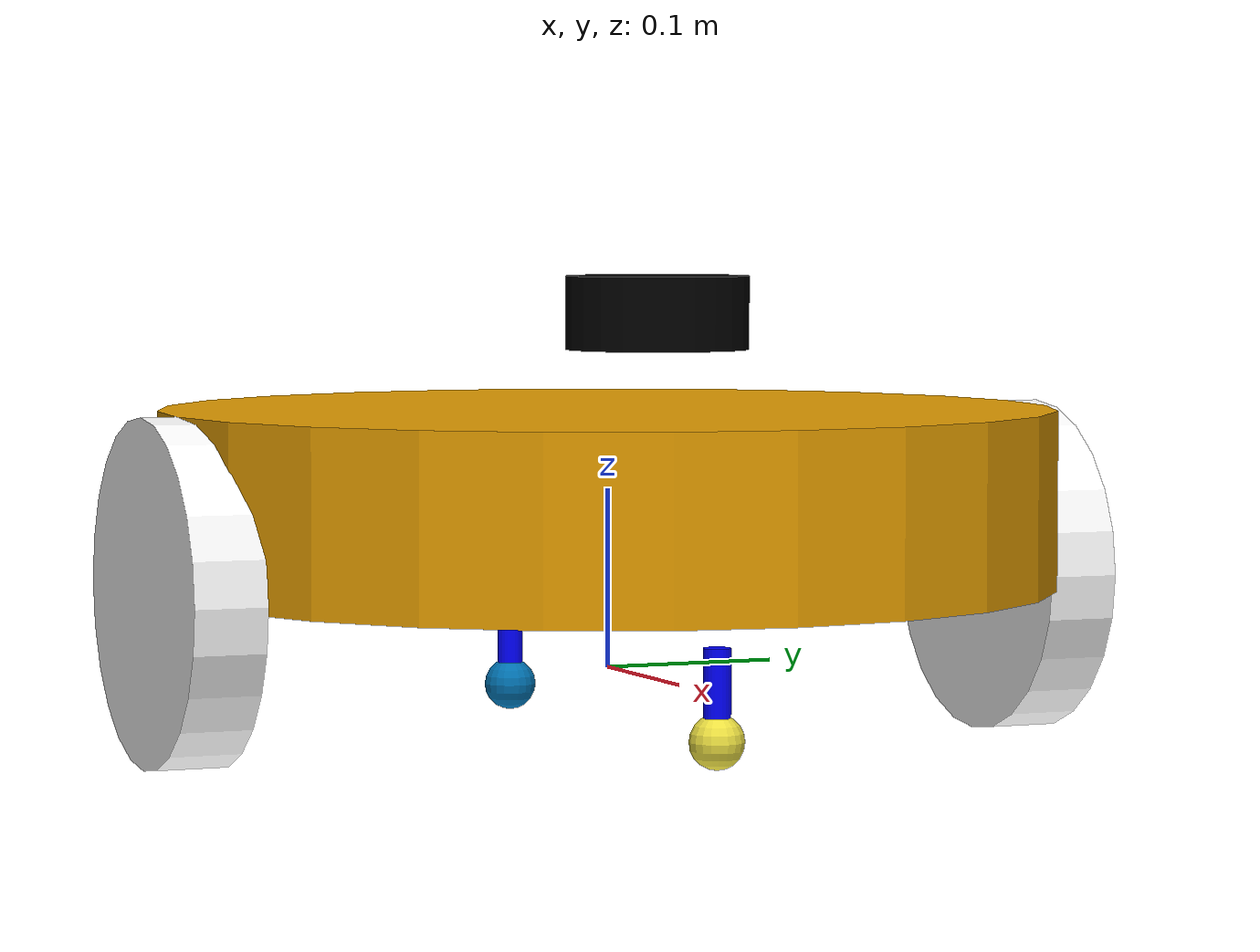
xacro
<?xml version="1.0"?>
<robot xmlns:xacro="http://www.ros.org/wiki/xacro" name="gp">
    <xacro:include filename="properties.xacro"/>
    <xacro:include filename="inertial_macros.xacro"/>
    <xacro:include filename="chassis.xacro"/>
    <xacro:include filename="wheels.xacro"/>
    <xacro:include filename="caster_wheel.xacro"/>
    <xacro:include filename="gazebo_control.xacro"/>
    <xacro:include filename="control.xacro"/>
    <xacro:include filename="lidar.xacro"/>

    <link name="base_link"/>
    <link name="base_footprint"/>
    <joint name="base_footprint_joint" type="fixed">
        <parent link="base_link"/>
        <child link="base_footprint"/>
    </joint>
</robot>

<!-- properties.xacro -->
<robot xmlns:xacro="http://www.ros.org/wiki/xacro">

    <!-- Properties -->

    <!-- Chassis -->
    <xacro:property name="chassis_radius" value="0.25"/>
    <xacro:property name="chassis_length" value="0.1"/>
    <xacro:property name="chassis_mass" value="9.0"/>

    <!-- Wheels -->
    <xacro:property name="wheel_offset_x" value="0.0"/> <!-- Centered on x-axis -->
    <xacro:property name="wheel_offset_y" value="0.25"/> <!-- Adjusted for the new radius -->
    <xacro:property name="wheel_offset_z" value="0.05"/> <!-- Adjusted for the new thickness -->
    <xacro:property name="wheel_thickness" value="0.04"/> <!-- 4 cm -->
    <xacro:property name="wheel_radius" value="0.095"/> <!-- 9.5 cm -->
    <xacro:property name="wheel_mass" value="0.037"/>

    <!-- Caster Wheel -->
    <xacro:property name="caster_wheel_radius" value="0.015"/> <!-- Increased size -->
    <xacro:property name="caster_wheel_mass" value="0.05"/> <!-- Increased mass -->
    <xacro:property name="caster_wheel_offset_x" value="0.15"/> <!-- Positioned forward -->
    <xacro:property name="caster_wheel_offset_z" value="-0.025"/>

    <!-- Colors -->
    <material name="white">
      <color rgba="1 1 1 1"/>
    </material>
    <material name="red">
      <color rgba="1 0 0 1"/>
    </material>
    <material name="green">
      <color rgba="0 1 0 1"/>
    </material>
    <material name="blue">
      <color rgba="0 0 1 1"/>
    </material>
    <material name="black">
      <color rgba="0 0 0 1"/>
    </material>

</robot>

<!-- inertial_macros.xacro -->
<robot xmlns:xacro="http://www.ros.org/wiki/xacro">
  <!-- Specify some standard inertial calculations -->
  <!-- These make use of xacro's mathematical functionality -->

  <!-- Macro for Inertial Properties of a Sphere -->
  <xacro:macro name="inertial_sphere" params="mass radius *origin">
    <inertial>
      <xacro:insert_block name="origin"/>
      <mass value="${mass}"/>
      <inertia
        ixx="${(2/5) * mass * (radius*radius)}" ixy="0.0" ixz="0.0"
        iyy="${(2/5) * mass * (radius*radius)}" iyz="0.0"
        izz="${(2/5) * mass * (radius*radius)}"/>
    </inertial>
  </xacro:macro>

  <!-- Macro for Inertial Properties of a Box -->
  <xacro:macro name="inertial_box" params="mass x y z *origin">
    <inertial>
      <xacro:insert_block name="origin"/>
      <mass value="${mass}"/>
      <inertia
        ixx="${(1/12) * mass * (y*y + z*z)}" ixy="0.0" ixz="0.0"
        iyy="${(1/12) * mass * (x*x + z*z)}" iyz="0.0"
        izz="${(1/12) * mass * (x*x + y*y)}"/>
    </inertial>
  </xacro:macro>

  <!-- Macro for Inertial Properties of a Cylinder -->
  <xacro:macro name="inertial_cylinder" params="mass length radius *origin">
    <inertial>
      <xacro:insert_block name="origin"/>
      <mass value="${mass}"/>
      <inertia
        ixx="${(1/12) * mass * (3*radius*radius + length*length)}" ixy="0.0" ixz="0.0"
        iyy="${(1/12) * mass * (3*radius*radius + length*length)}" iyz="0.0"
        izz="${(1/2) * mass * (radius*radius)}"/>
    </inertial>
  </xacro:macro>
</robot>

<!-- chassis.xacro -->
<robot xmlns:xacro="http://www.ros.org/wiki/xacro">
    <!-- Chassis Link -->
    <link name="chassis_link">
        <visual>
            <geometry>
                <cylinder radius="0.25" length="0.1"/>
            </geometry>
            <origin xyz="0 0 0.095" rpy="0 0 0"/>
        </visual>
        <collision>
            <geometry>
                <cylinder radius="0.25" length="0.1"/>
            </geometry>
            <origin xyz="0 0 0.095" rpy="0 0 0"/>
        </collision>
        <inertial>
            <origin xyz="0 0 0.095" rpy="0 0 0"/>
            <mass value="9.0"/>
            <inertia
              ixx="0.03125" ixy="0.0" ixz="0.0"
              iyy="0.03125" iyz="0.0"
              izz="0.015625"/>
        </inertial>
    </link>

    <joint name="chassis_joint" type="fixed">
        <parent link="base_link"/>
        <child link="chassis_link"/>
        <origin xyz="0 0 0" rpy="0 0 0"/>
    </joint>

   <gazebo refernce="chassis_link">
        <material> Gazebo/Grey </material>

   </gazebo>

</robot>

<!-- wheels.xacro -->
<robot xmlns:xacro="http://www.ros.org/wiki/xacro">

  <!-- Wheel Link Macro -->
  <xacro:macro name="wheel_link" params="link_name">
    <link name="${link_name}">
      <collision>
        <geometry>
          <cylinder radius="${wheel_radius}" length="${wheel_thickness}"/>
        </geometry>
      </collision>
      <visual>
        <geometry>
          <cylinder radius="${wheel_radius}" length="${wheel_thickness}"/>
        </geometry>
        <material name="white"/>

      </visual>
      <xacro:inertial_cylinder mass="${wheel_mass}" length="${wheel_thickness}" radius="${wheel_radius}">
        <origin xyz="0 0 0" rpy="0 0 0"/>

      </xacro:inertial_cylinder>
    </link>
  </xacro:macro>

  <!-- Wheel Joint Macro -->
  <xacro:macro name="wheel_joint" params="joint_name wheel_name x_offset y_offset ">
    <joint name="${joint_name}" type="continuous">
      <origin xyz="${x_offset} ${y_offset} ${wheel_offset_z}" rpy="${-pi/2} 0.0 0.0"/>
      <parent link="base_link"/>
      <child link="${wheel_name}"/>
      <axis xyz="0.0 0.0 1"/>
    </joint>
  </xacro:macro>

  <!-- Left Wheel Link -->
  <xacro:wheel_link link_name="left_wheel_link"/>

  <!-- Left Wheel Joint -->
  <xacro:wheel_joint joint_name="left_wheel_joint" wheel_name="left_wheel_link" x_offset="${wheel_offset_x}" y_offset="${wheel_offset_y}" />

  <!-- Right Wheel Link -->
  <xacro:wheel_link link_name="right_wheel_link"/>

  <!-- Right Wheel Joint -->
  <xacro:wheel_joint joint_name="right_wheel_joint" wheel_name="right_wheel_link" x_offset="${wheel_offset_x}" y_offset="${-wheel_offset_y}" />

  <gazebo refernce="left_wheel_link">
    <material> Gazebo/Black </material>

</gazebo>

<gazebo refernce="right_wheel_link">
  <material> Gazebo/Black </material>

</gazebo>
</robot>

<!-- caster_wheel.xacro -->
<robot xmlns:xacro="http://www.ros.org/wiki/xacro">

    <!-- Caster Wheel Link -->
    <link name="caster_wheel_link">
      <visual>
        <geometry>
          <sphere radius="${caster_wheel_radius}"/>
        </geometry>
      </visual>
      <collision>
        <geometry>
          <sphere radius="${caster_wheel_radius}"/>
        </geometry>
      </collision>
      <xacro:inertial_sphere mass="${caster_wheel_mass}" radius="${caster_wheel_radius}">
        <origin xyz="0.0 0.0 0.0" rpy="0.0 0.0 0.0"/>
      </xacro:inertial_sphere>
    </link>

    <link name="caster2_wheel_link">
      <visual>
        <geometry>
          <sphere radius="${caster_wheel_radius}"/>
        </geometry>
      </visual>
      <collision>
        <geometry>
          <sphere radius="${caster_wheel_radius}"/>
        </geometry>
      </collision>
      <xacro:inertial_sphere mass="${caster_wheel_mass}" radius="${caster_wheel_radius}">
        <origin xyz="0.0 0.0 0.0" rpy="0.0 0.0 0.0"/>
      </xacro:inertial_sphere>
    </link>

    <joint name="caster_wheel2_joint" type="fixed">
      <origin xyz="${-caster_wheel_offset_x} 0.0 ${caster_wheel_offset_z}" rpy="0.0 0.0 0.0"/>
      <parent link="chassis_link"/>
      <child link="caster2_wheel_link"/>
    </joint>

    <link name="caster2_holder">
      <visual>
        <geometry>
          <cylinder radius="${caster_wheel_radius/2}" length="${caster_wheel_offset_z*2}"/>
        </geometry>
        <material name="blue"/>
      </visual>
    </link>

    <!-- Holder Joint -->
    <joint name="holder2_joint" type="fixed">
      <origin xyz="${-caster_wheel_offset_x} 0.0 0.0" rpy="0.0 0.0 0.0"/>
      <parent link="chassis_link"/>
      <child link="caster2_holder"/>
    </joint>

    <!-- Caster Wheel Joint -->
    <joint name="caster_wheel_joint" type="fixed">
      <origin xyz="${caster_wheel_offset_x} 0.0 ${caster_wheel_offset_z}" rpy="0.0 0.0 0.0"/>
      <parent link="chassis_link"/>
      <child link="caster_wheel_link"/>
    </joint>

    <!-- Caster Holder (Only for visuals) -->
    <link name="caster_holder">
      <visual>
        <geometry>
          <cylinder radius="${caster_wheel_radius/2}" length="${caster_wheel_offset_z*2}"/>
        </geometry>
        <material name="blue"/>
      </visual>
    </link>

    <!-- Holder Joint -->
    <joint name="holder_joint" type="fixed">
      <origin xyz="${caster_wheel_offset_x} 0.0 0.0" rpy="0.0 0.0 0.0"/>
      <parent link="chassis_link"/>
      <child link="caster_holder"/>
    </joint>

    <gazebo refernce="caster2_wheel_link">
      <mu1 value="0.001"/>
      <mu2 value="0.001"/>

    </gazebo>

    <gazebo refernce="caster_wheel_link">
      <mu1 value="0.001"/>
      <mu2 value="0.001"/>

    </gazebo>

  </robot>

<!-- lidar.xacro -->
<robot xmlns:xacro="http://www.ros.org/wiki/xacro">

    <!-- Lidar Frame -->
    <link name="laser_frame">
        <visual>
            <geometry>
                <cylinder radius="0.05" length="0.04"/>
            </geometry>
            <material name="black"/>
        </visual>
    </link>
    <gazebo reference="laser_frame">
        <material>
            Gazebo/Black
        </material>
    </gazebo>

    <joint name="laser_joint" type="fixed">
        <origin xyz="0.07 0.0 0.20" rpy="0.0 0.0 0.0"/>
        <parent link="chassis_link"/>
        <child link="laser_frame"/>
    </joint>

    <!-- Lidar Plugin -->
    <gazebo reference="laser_frame">
        <material>Gazebo/Black</material>

        <sensor name="laser" type="ray">
            <pose> 0 0 0 0 0 0 </pose>
            <visualize>true</visualize>
            <update_rate>100</update_rate>
            <ray>
                <scan>
                    <horizontal>
                        <samples>360</samples>
                        <min_angle>-3.14</min_angle>
                        <max_angle>3.14</max_angle>
                    </horizontal>
                </scan>
                <range>
                    <min>0.3</min>
                    <max>12</max>
                </range>
            </ray>
            <plugin name="laser_controller" filename="libgazebo_ros_ray_sensor.so">
                <ros>
                    <argument>~/out:=scan</argument>
                </ros>
                <output_type>sensor_msgs/LaserScan</output_type>
                <frame_name>laser_frame</frame_name>
            </plugin>
        </sensor>
    </gazebo>
</robot>
